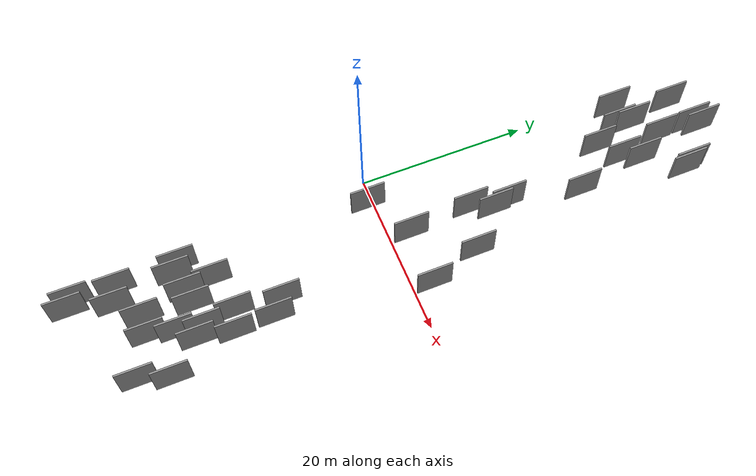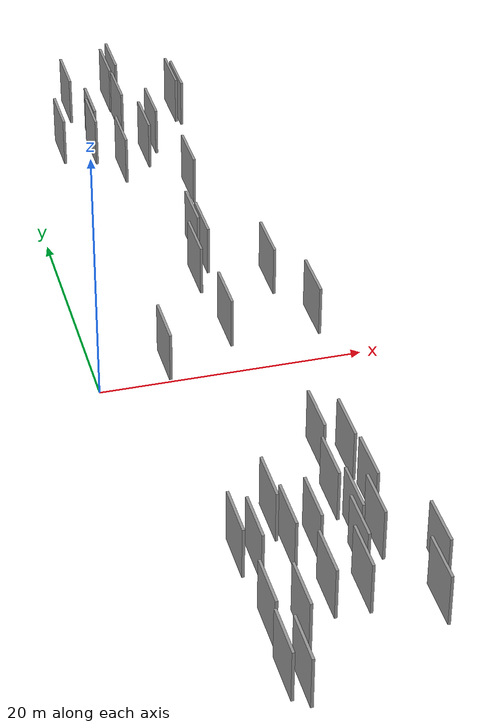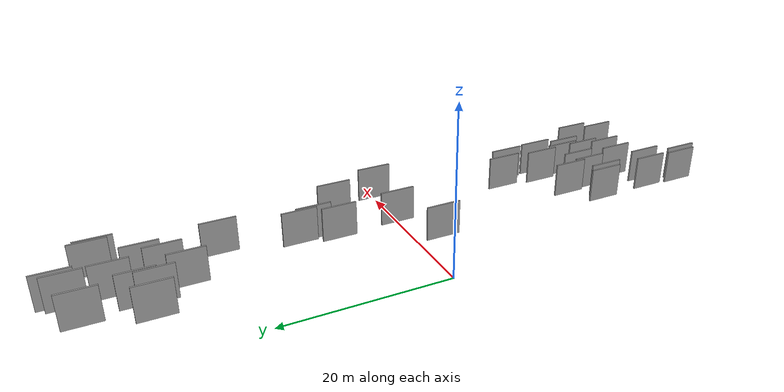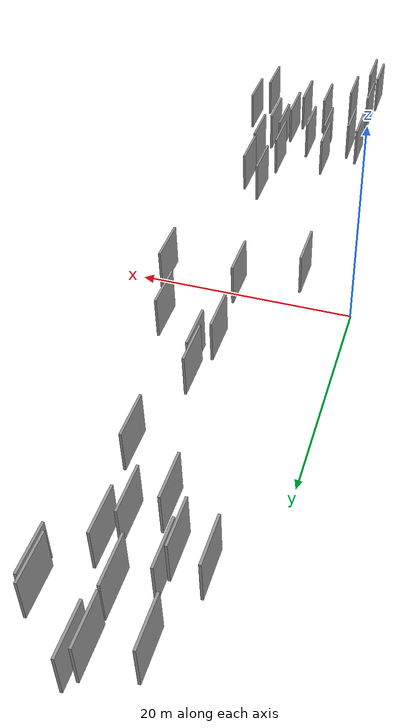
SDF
<sdf version="1.6">
 <world name="default">
  <scene>
   <sky><clouds><speed>12</speed></clouds></sky>
   <ambient>0.4 0.4 0.4 1</ambient>
   <background>0.7 0.7 0.7 1</background>
   <shadows>1</shadows>
  </scene>
  <gravity>0 0 -9.8066</gravity>
  <magnetic_field>6e-06 2.3e-05 -4.2e-05</magnetic_field>
  <physics default="0" name="default_physics" type="ode">
   <ode>
    <solver>
     <type>quick</type>
     <iters>10</iters>
     <sor>1.0</sor>
     <use_dynamic_moi_rescaling>0</use_dynamic_moi_rescaling>
    </solver>
    <constraints>
     <cfm>0</cfm>
     <erp>0.2</erp>
     <contact_max_correcting_vel>100</contact_max_correcting_vel>
     <contact_surface_layer>0.001</contact_surface_layer>
    </constraints>
   </ode>
   <max_step_size>0.004</max_step_size>
   <real_time_factor>1</real_time_factor>
   <real_time_update_rate>250</real_time_update_rate>
  </physics>
  <light name="sun" type="directional">
   <pose>0 0 10 0 0 0</pose>
   <diffuse>0.8 0.8 0.8 1</diffuse>
   <specular>0.2 0.2 0.2 1</specular>
   <attenuation>
    <range>1000</range>
    <constant>0.9</constant>
    <linear>0.01</linear>
    <quadratic>0.001</quadratic>
   </attenuation>
   <direction>-0.5 0.1 -0.9</direction>
  </light>
  <model name="grey_wall_1">
   <static>1</static>
   <pose>4.3847 -29.8307 2.5 0.000000 0.000000 1.570796</pose>
   <link name="link">
    <pose>0 0 2.00 0 0 0</pose>
    <collision name="collision"><geometry><box><size>4.00 0.2 4.00</size></box></geometry></collision>
    <visual name="visual">
     <cast_shadows>0</cast_shadows>
     <geometry><box><size>4.00 0.2 4.00</size></box></geometry>
     <material>
      <script>
       <uri>model://grey_wall/materials/scripts</uri>
       <uri>model://grey_wall/materials/textures</uri>
       <name>vrc/grey_wall</name>
      </script>
     </material>
    </visual>
   </link>
  </model>
  <model name="grey_wall_2">
   <static>1</static>
   <pose>14.2228 -19.6094 2.5 0.000000 0.000000 1.570796</pose>
   <link name="link">
    <pose>0 0 2.00 0 0 0</pose>
    <collision name="collision"><geometry><box><size>4.00 0.2 4.00</size></box></geometry></collision>
    <visual name="visual">
     <cast_shadows>0</cast_shadows>
     <geometry><box><size>4.00 0.2 4.00</size></box></geometry>
     <material>
      <script>
       <uri>model://grey_wall/materials/scripts</uri>
       <uri>model://grey_wall/materials/textures</uri>
       <name>vrc/grey_wall</name>
      </script>
     </material>
    </visual>
   </link>
  </model>
  <model name="grey_wall_3">
   <static>1</static>
   <pose>9.9990 1.8396 2.5 0.000000 0.000000 1.570796</pose>
   <link name="link">
    <pose>0 0 2.00 0 0 0</pose>
    <collision name="collision"><geometry><box><size>4.00 0.2 4.00</size></box></geometry></collision>
    <visual name="visual">
     <cast_shadows>0</cast_shadows>
     <geometry><box><size>4.00 0.2 4.00</size></box></geometry>
     <material>
      <script>
       <uri>model://grey_wall/materials/scripts</uri>
       <uri>model://grey_wall/materials/textures</uri>
       <name>vrc/grey_wall</name>
      </script>
     </material>
    </visual>
   </link>
  </model>
  <model name="grey_wall_4">
   <static>1</static>
   <pose>3.2745 30.1611 2.5 0.000000 0.000000 1.570796</pose>
   <link name="link">
    <pose>0 0 2.00 0 0 0</pose>
    <collision name="collision"><geometry><box><size>4.00 0.2 4.00</size></box></geometry></collision>
    <visual name="visual">
     <cast_shadows>0</cast_shadows>
     <geometry><box><size>4.00 0.2 4.00</size></box></geometry>
     <material>
      <script>
       <uri>model://grey_wall/materials/scripts</uri>
       <uri>model://grey_wall/materials/textures</uri>
       <name>vrc/grey_wall</name>
      </script>
     </material>
    </visual>
   </link>
  </model>
  <model name="grey_wall_5">
   <static>1</static>
   <pose>9.4414 38.3951 2.5 0.000000 0.000000 1.570796</pose>
   <link name="link">
    <pose>0 0 2.00 0 0 0</pose>
    <collision name="collision"><geometry><box><size>4.00 0.2 4.00</size></box></geometry></collision>
    <visual name="visual">
     <cast_shadows>0</cast_shadows>
     <geometry><box><size>4.00 0.2 4.00</size></box></geometry>
     <material>
      <script>
       <uri>model://grey_wall/materials/scripts</uri>
       <uri>model://grey_wall/materials/textures</uri>
       <name>vrc/grey_wall</name>
      </script>
     </material>
    </visual>
   </link>
  </model>
  <model name="grey_wall_6">
   <static>1</static>
   <pose>10.9726 29.9443 2.5 0.000000 0.000000 1.570796</pose>
   <link name="link">
    <pose>0 0 2.00 0 0 0</pose>
    <collision name="collision"><geometry><box><size>4.00 0.2 4.00</size></box></geometry></collision>
    <visual name="visual">
     <cast_shadows>0</cast_shadows>
     <geometry><box><size>4.00 0.2 4.00</size></box></geometry>
     <material>
      <script>
       <uri>model://grey_wall/materials/scripts</uri>
       <uri>model://grey_wall/materials/textures</uri>
       <name>vrc/grey_wall</name>
      </script>
     </material>
    </visual>
   </link>
  </model>
  <model name="grey_wall_7">
   <static>1</static>
   <pose>6.3813 -30.5952 2.5 0.000000 0.000000 1.570796</pose>
   <link name="link">
    <pose>0 0 2.00 0 0 0</pose>
    <collision name="collision"><geometry><box><size>4.00 0.2 4.00</size></box></geometry></collision>
    <visual name="visual">
     <cast_shadows>0</cast_shadows>
     <geometry><box><size>4.00 0.2 4.00</size></box></geometry>
     <material>
      <script>
       <uri>model://grey_wall/materials/scripts</uri>
       <uri>model://grey_wall/materials/textures</uri>
       <name>vrc/grey_wall</name>
      </script>
     </material>
    </visual>
   </link>
  </model>
  <model name="grey_wall_8">
   <static>1</static>
   <pose>5.1197 -35.2405 2.5 0.000000 0.000000 1.570796</pose>
   <link name="link">
    <pose>0 0 2.00 0 0 0</pose>
    <collision name="collision"><geometry><box><size>4.00 0.2 4.00</size></box></geometry></collision>
    <visual name="visual">
     <cast_shadows>0</cast_shadows>
     <geometry><box><size>4.00 0.2 4.00</size></box></geometry>
     <material>
      <script>
       <uri>model://grey_wall/materials/scripts</uri>
       <uri>model://grey_wall/materials/textures</uri>
       <name>vrc/grey_wall</name>
      </script>
     </material>
    </visual>
   </link>
  </model>
  <model name="grey_wall_9">
   <static>1</static>
   <pose>5.8029 29.4594 2.5 0.000000 0.000000 1.570796</pose>
   <link name="link">
    <pose>0 0 2.00 0 0 0</pose>
    <collision name="collision"><geometry><box><size>4.00 0.2 4.00</size></box></geometry></collision>
    <visual name="visual">
     <cast_shadows>0</cast_shadows>
     <geometry><box><size>4.00 0.2 4.00</size></box></geometry>
     <material>
      <script>
       <uri>model://grey_wall/materials/scripts</uri>
       <uri>model://grey_wall/materials/textures</uri>
       <name>vrc/grey_wall</name>
      </script>
     </material>
    </visual>
   </link>
  </model>
  <model name="grey_wall_10">
   <static>1</static>
   <pose>13.7922 34.5497 2.5 0.000000 0.000000 1.570796</pose>
   <link name="link">
    <pose>0 0 2.00 0 0 0</pose>
    <collision name="collision"><geometry><box><size>4.00 0.2 4.00</size></box></geometry></collision>
    <visual name="visual">
     <cast_shadows>0</cast_shadows>
     <geometry><box><size>4.00 0.2 4.00</size></box></geometry>
     <material>
      <script>
       <uri>model://grey_wall/materials/scripts</uri>
       <uri>model://grey_wall/materials/textures</uri>
       <name>vrc/grey_wall</name>
      </script>
     </material>
    </visual>
   </link>
  </model>
  <model name="grey_wall_11">
   <static>1</static>
   <pose>4.1305 -34.4087 2.5 0.000000 0.000000 1.570796</pose>
   <link name="link">
    <pose>0 0 2.00 0 0 0</pose>
    <collision name="collision"><geometry><box><size>4.00 0.2 4.00</size></box></geometry></collision>
    <visual name="visual">
     <cast_shadows>0</cast_shadows>
     <geometry><box><size>4.00 0.2 4.00</size></box></geometry>
     <material>
      <script>
       <uri>model://grey_wall/materials/scripts</uri>
       <uri>model://grey_wall/materials/textures</uri>
       <name>vrc/grey_wall</name>
      </script>
     </material>
    </visual>
   </link>
  </model>
  <model name="grey_wall_12">
   <static>1</static>
   <pose>16.6823 1.7361 2.5 0.000000 0.000000 1.570796</pose>
   <link name="link">
    <pose>0 0 2.00 0 0 0</pose>
    <collision name="collision"><geometry><box><size>4.00 0.2 4.00</size></box></geometry></collision>
    <visual name="visual">
     <cast_shadows>0</cast_shadows>
     <geometry><box><size>4.00 0.2 4.00</size></box></geometry>
     <material>
      <script>
       <uri>model://grey_wall/materials/scripts</uri>
       <uri>model://grey_wall/materials/textures</uri>
       <name>vrc/grey_wall</name>
      </script>
     </material>
    </visual>
   </link>
  </model>
  <model name="grey_wall_13">
   <static>1</static>
   <pose>14.0278 -15.2197 2.5 0.000000 0.000000 1.570796</pose>
   <link name="link">
    <pose>0 0 2.00 0 0 0</pose>
    <collision name="collision"><geometry><box><size>4.00 0.2 4.00</size></box></geometry></collision>
    <visual name="visual">
     <cast_shadows>0</cast_shadows>
     <geometry><box><size>4.00 0.2 4.00</size></box></geometry>
     <material>
      <script>
       <uri>model://grey_wall/materials/scripts</uri>
       <uri>model://grey_wall/materials/textures</uri>
       <name>vrc/grey_wall</name>
      </script>
     </material>
    </visual>
   </link>
  </model>
  <model name="grey_wall_14">
   <static>1</static>
   <pose>4.6592 -1.1658 2.5 0.000000 0.000000 1.570796</pose>
   <link name="link">
    <pose>0 0 2.00 0 0 0</pose>
    <collision name="collision"><geometry><box><size>4.00 0.2 4.00</size></box></geometry></collision>
    <visual name="visual">
     <cast_shadows>0</cast_shadows>
     <geometry><box><size>4.00 0.2 4.00</size></box></geometry>
     <material>
      <script>
       <uri>model://grey_wall/materials/scripts</uri>
       <uri>model://grey_wall/materials/textures</uri>
       <name>vrc/grey_wall</name>
      </script>
     </material>
    </visual>
   </link>
  </model>
  <model name="grey_wall_15">
   <static>1</static>
   <pose>8.8139 33.2673 2.5 0.000000 0.000000 1.570796</pose>
   <link name="link">
    <pose>0 0 2.00 0 0 0</pose>
    <collision name="collision"><geometry><box><size>4.00 0.2 4.00</size></box></geometry></collision>
    <visual name="visual">
     <cast_shadows>0</cast_shadows>
     <geometry><box><size>4.00 0.2 4.00</size></box></geometry>
     <material>
      <script>
       <uri>model://grey_wall/materials/scripts</uri>
       <uri>model://grey_wall/materials/textures</uri>
       <name>vrc/grey_wall</name>
      </script>
     </material>
    </visual>
   </link>
  </model>
  <model name="grey_wall_16">
   <static>1</static>
   <pose>5.2324 -23.7114 2.5 0.000000 0.000000 1.570796</pose>
   <link name="link">
    <pose>0 0 2.00 0 0 0</pose>
    <collision name="collision"><geometry><box><size>4.00 0.2 4.00</size></box></geometry></collision>
    <visual name="visual">
     <cast_shadows>0</cast_shadows>
     <geometry><box><size>4.00 0.2 4.00</size></box></geometry>
     <material>
      <script>
       <uri>model://grey_wall/materials/scripts</uri>
       <uri>model://grey_wall/materials/textures</uri>
       <name>vrc/grey_wall</name>
      </script>
     </material>
    </visual>
   </link>
  </model>
  <model name="grey_wall_17">
   <static>1</static>
   <pose>5.1013 36.6157 2.5 0.000000 0.000000 1.570796</pose>
   <link name="link">
    <pose>0 0 2.00 0 0 0</pose>
    <collision name="collision"><geometry><box><size>4.00 0.2 4.00</size></box></geometry></collision>
    <visual name="visual">
     <cast_shadows>0</cast_shadows>
     <geometry><box><size>4.00 0.2 4.00</size></box></geometry>
     <material>
      <script>
       <uri>model://grey_wall/materials/scripts</uri>
       <uri>model://grey_wall/materials/textures</uri>
       <name>vrc/grey_wall</name>
      </script>
     </material>
    </visual>
   </link>
  </model>
  <model name="grey_wall_18">
   <static>1</static>
   <pose>13.4815 -23.4838 2.5 0.000000 0.000000 1.570796</pose>
   <link name="link">
    <pose>0 0 2.00 0 0 0</pose>
    <collision name="collision"><geometry><box><size>4.00 0.2 4.00</size></box></geometry></collision>
    <visual name="visual">
     <cast_shadows>0</cast_shadows>
     <geometry><box><size>4.00 0.2 4.00</size></box></geometry>
     <material>
      <script>
       <uri>model://grey_wall/materials/scripts</uri>
       <uri>model://grey_wall/materials/textures</uri>
       <name>vrc/grey_wall</name>
      </script>
     </material>
    </visual>
   </link>
  </model>
  <model name="grey_wall_19">
   <static>1</static>
   <pose>12.3198 -22.4349 2.5 0.000000 0.000000 1.570796</pose>
   <link name="link">
    <pose>0 0 2.00 0 0 0</pose>
    <collision name="collision"><geometry><box><size>4.00 0.2 4.00</size></box></geometry></collision>
    <visual name="visual">
     <cast_shadows>0</cast_shadows>
     <geometry><box><size>4.00 0.2 4.00</size></box></geometry>
     <material>
      <script>
       <uri>model://grey_wall/materials/scripts</uri>
       <uri>model://grey_wall/materials/textures</uri>
       <name>vrc/grey_wall</name>
      </script>
     </material>
    </visual>
   </link>
  </model>
  <model name="grey_wall_20">
   <static>1</static>
   <pose>11.1472 -28.1819 2.5 0.000000 0.000000 1.570796</pose>
   <link name="link">
    <pose>0 0 2.00 0 0 0</pose>
    <collision name="collision"><geometry><box><size>4.00 0.2 4.00</size></box></geometry></collision>
    <visual name="visual">
     <cast_shadows>0</cast_shadows>
     <geometry><box><size>4.00 0.2 4.00</size></box></geometry>
     <material>
      <script>
       <uri>model://grey_wall/materials/scripts</uri>
       <uri>model://grey_wall/materials/textures</uri>
       <name>vrc/grey_wall</name>
      </script>
     </material>
    </visual>
   </link>
  </model>
  <model name="grey_wall_21">
   <static>1</static>
   <pose>11.8134 -25.2558 2.5 0.000000 0.000000 1.570796</pose>
   <link name="link">
    <pose>0 0 2.00 0 0 0</pose>
    <collision name="collision"><geometry><box><size>4.00 0.2 4.00</size></box></geometry></collision>
    <visual name="visual">
     <cast_shadows>0</cast_shadows>
     <geometry><box><size>4.00 0.2 4.00</size></box></geometry>
     <material>
      <script>
       <uri>model://grey_wall/materials/scripts</uri>
       <uri>model://grey_wall/materials/textures</uri>
       <name>vrc/grey_wall</name>
      </script>
     </material>
    </visual>
   </link>
  </model>
  <model name="grey_wall_22">
   <static>1</static>
   <pose>4.1605 -22.8858 2.5 0.000000 0.000000 1.570796</pose>
   <link name="link">
    <pose>0 0 2.00 0 0 0</pose>
    <collision name="collision"><geometry><box><size>4.00 0.2 4.00</size></box></geometry></collision>
    <visual name="visual">
     <cast_shadows>0</cast_shadows>
     <geometry><box><size>4.00 0.2 4.00</size></box></geometry>
     <material>
      <script>
       <uri>model://grey_wall/materials/scripts</uri>
       <uri>model://grey_wall/materials/textures</uri>
       <name>vrc/grey_wall</name>
      </script>
     </material>
    </visual>
   </link>
  </model>
  <model name="grey_wall_23">
   <static>1</static>
   <pose>10.3701 13.3363 2.5 0.000000 0.000000 1.570796</pose>
   <link name="link">
    <pose>0 0 2.00 0 0 0</pose>
    <collision name="collision"><geometry><box><size>4.00 0.2 4.00</size></box></geometry></collision>
    <visual name="visual">
     <cast_shadows>0</cast_shadows>
     <geometry><box><size>4.00 0.2 4.00</size></box></geometry>
     <material>
      <script>
       <uri>model://grey_wall/materials/scripts</uri>
       <uri>model://grey_wall/materials/textures</uri>
       <name>vrc/grey_wall</name>
      </script>
     </material>
    </visual>
   </link>
  </model>
  <model name="grey_wall_24">
   <static>1</static>
   <pose>9.4260 -22.7633 2.5 0.000000 0.000000 1.570796</pose>
   <link name="link">
    <pose>0 0 2.00 0 0 0</pose>
    <collision name="collision"><geometry><box><size>4.00 0.2 4.00</size></box></geometry></collision>
    <visual name="visual">
     <cast_shadows>0</cast_shadows>
     <geometry><box><size>4.00 0.2 4.00</size></box></geometry>
     <material>
      <script>
       <uri>model://grey_wall/materials/scripts</uri>
       <uri>model://grey_wall/materials/textures</uri>
       <name>vrc/grey_wall</name>
      </script>
     </material>
    </visual>
   </link>
  </model>
  <model name="grey_wall_25">
   <static>1</static>
   <pose>6.0839 31.2071 2.5 0.000000 0.000000 1.570796</pose>
   <link name="link">
    <pose>0 0 2.00 0 0 0</pose>
    <collision name="collision"><geometry><box><size>4.00 0.2 4.00</size></box></geometry></collision>
    <visual name="visual">
     <cast_shadows>0</cast_shadows>
     <geometry><box><size>4.00 0.2 4.00</size></box></geometry>
     <material>
      <script>
       <uri>model://grey_wall/materials/scripts</uri>
       <uri>model://grey_wall/materials/textures</uri>
       <name>vrc/grey_wall</name>
      </script>
     </material>
    </visual>
   </link>
  </model>
  <model name="grey_wall_26">
   <static>1</static>
   <pose>7.2217 -19.9952 2.5 0.000000 0.000000 1.570796</pose>
   <link name="link">
    <pose>0 0 2.00 0 0 0</pose>
    <collision name="collision"><geometry><box><size>4.00 0.2 4.00</size></box></geometry></collision>
    <visual name="visual">
     <cast_shadows>0</cast_shadows>
     <geometry><box><size>4.00 0.2 4.00</size></box></geometry>
     <material>
      <script>
       <uri>model://grey_wall/materials/scripts</uri>
       <uri>model://grey_wall/materials/textures</uri>
       <name>vrc/grey_wall</name>
      </script>
     </material>
    </visual>
   </link>
  </model>
  <model name="grey_wall_27">
   <static>1</static>
   <pose>15.5526 -30.4218 2.5 0.000000 0.000000 1.570796</pose>
   <link name="link">
    <pose>0 0 2.00 0 0 0</pose>
    <collision name="collision"><geometry><box><size>4.00 0.2 4.00</size></box></geometry></collision>
    <visual name="visual">
     <cast_shadows>0</cast_shadows>
     <geometry><box><size>4.00 0.2 4.00</size></box></geometry>
     <material>
      <script>
       <uri>model://grey_wall/materials/scripts</uri>
       <uri>model://grey_wall/materials/textures</uri>
       <name>vrc/grey_wall</name>
      </script>
     </material>
    </visual>
   </link>
  </model>
  <model name="grey_wall_28">
   <static>1</static>
   <pose>12.3128 -13.8022 2.5 0.000000 0.000000 1.570796</pose>
   <link name="link">
    <pose>0 0 2.00 0 0 0</pose>
    <collision name="collision"><geometry><box><size>4.00 0.2 4.00</size></box></geometry></collision>
    <visual name="visual">
     <cast_shadows>0</cast_shadows>
     <geometry><box><size>4.00 0.2 4.00</size></box></geometry>
     <material>
      <script>
       <uri>model://grey_wall/materials/scripts</uri>
       <uri>model://grey_wall/materials/textures</uri>
       <name>vrc/grey_wall</name>
      </script>
     </material>
    </visual>
   </link>
  </model>
  <model name="grey_wall_29">
   <static>1</static>
   <pose>7.5653 26.0391 2.5 0.000000 0.000000 1.570796</pose>
   <link name="link">
    <pose>0 0 2.00 0 0 0</pose>
    <collision name="collision"><geometry><box><size>4.00 0.2 4.00</size></box></geometry></collision>
    <visual name="visual">
     <cast_shadows>0</cast_shadows>
     <geometry><box><size>4.00 0.2 4.00</size></box></geometry>
     <material>
      <script>
       <uri>model://grey_wall/materials/scripts</uri>
       <uri>model://grey_wall/materials/textures</uri>
       <name>vrc/grey_wall</name>
      </script>
     </material>
    </visual>
   </link>
  </model>
  <model name="grey_wall_30">
   <static>1</static>
   <pose>10.7030 11.5822 2.5 0.000000 0.000000 1.570796</pose>
   <link name="link">
    <pose>0 0 2.00 0 0 0</pose>
    <collision name="collision"><geometry><box><size>4.00 0.2 4.00</size></box></geometry></collision>
    <visual name="visual">
     <cast_shadows>0</cast_shadows>
     <geometry><box><size>4.00 0.2 4.00</size></box></geometry>
     <material>
      <script>
       <uri>model://grey_wall/materials/scripts</uri>
       <uri>model://grey_wall/materials/textures</uri>
       <name>vrc/grey_wall</name>
      </script>
     </material>
    </visual>
   </link>
  </model>
  <model name="grey_wall_31">
   <static>1</static>
   <pose>14.8318 7.5999 2.5 0.000000 0.000000 1.570796</pose>
   <link name="link">
    <pose>0 0 2.00 0 0 0</pose>
    <collision name="collision"><geometry><box><size>4.00 0.2 4.00</size></box></geometry></collision>
    <visual name="visual">
     <cast_shadows>0</cast_shadows>
     <geometry><box><size>4.00 0.2 4.00</size></box></geometry>
     <material>
      <script>
       <uri>model://grey_wall/materials/scripts</uri>
       <uri>model://grey_wall/materials/textures</uri>
       <name>vrc/grey_wall</name>
      </script>
     </material>
    </visual>
   </link>
  </model>
  <model name="grey_wall_32">
   <static>1</static>
   <pose>7.6338 -23.0873 2.5 0.000000 0.000000 1.570796</pose>
   <link name="link">
    <pose>0 0 2.00 0 0 0</pose>
    <collision name="collision"><geometry><box><size>4.00 0.2 4.00</size></box></geometry></collision>
    <visual name="visual">
     <cast_shadows>0</cast_shadows>
     <geometry><box><size>4.00 0.2 4.00</size></box></geometry>
     <material>
      <script>
       <uri>model://grey_wall/materials/scripts</uri>
       <uri>model://grey_wall/materials/textures</uri>
       <name>vrc/grey_wall</name>
      </script>
     </material>
    </visual>
   </link>
  </model>
  <model name="grey_wall_33">
   <static>1</static>
   <pose>11.7596 -18.9551 2.5 0.000000 0.000000 1.570796</pose>
   <link name="link">
    <pose>0 0 2.00 0 0 0</pose>
    <collision name="collision"><geometry><box><size>4.00 0.2 4.00</size></box></geometry></collision>
    <visual name="visual">
     <cast_shadows>0</cast_shadows>
     <geometry><box><size>4.00 0.2 4.00</size></box></geometry>
     <material>
      <script>
       <uri>model://grey_wall/materials/scripts</uri>
       <uri>model://grey_wall/materials/textures</uri>
       <name>vrc/grey_wall</name>
      </script>
     </material>
    </visual>
   </link>
  </model>
  <model name="grey_wall_34">
   <static>1</static>
   <pose>16.6591 -27.0915 2.5 0.000000 0.000000 1.570796</pose>
   <link name="link">
    <pose>0 0 2.00 0 0 0</pose>
    <collision name="collision"><geometry><box><size>4.00 0.2 4.00</size></box></geometry></collision>
    <visual name="visual">
     <cast_shadows>0</cast_shadows>
     <geometry><box><size>4.00 0.2 4.00</size></box></geometry>
     <material>
      <script>
       <uri>model://grey_wall/materials/scripts</uri>
       <uri>model://grey_wall/materials/textures</uri>
       <name>vrc/grey_wall</name>
      </script>
     </material>
    </visual>
   </link>
  </model>
  <model name="grey_wall_35">
   <static>1</static>
   <pose>14.1236 33.9546 2.5 0.000000 0.000000 1.570796</pose>
   <link name="link">
    <pose>0 0 2.00 0 0 0</pose>
    <collision name="collision"><geometry><box><size>4.00 0.2 4.00</size></box></geometry></collision>
    <visual name="visual">
     <cast_shadows>0</cast_shadows>
     <geometry><box><size>4.00 0.2 4.00</size></box></geometry>
     <material>
      <script>
       <uri>model://grey_wall/materials/scripts</uri>
       <uri>model://grey_wall/materials/textures</uri>
       <name>vrc/grey_wall</name>
      </script>
     </material>
    </visual>
   </link>
  </model>
  <model name="grey_wall_36">
   <static>1</static>
   <pose>9.5283 9.0852 2.5 0.000000 0.000000 1.570796</pose>
   <link name="link">
    <pose>0 0 2.00 0 0 0</pose>
    <collision name="collision"><geometry><box><size>4.00 0.2 4.00</size></box></geometry></collision>
    <visual name="visual">
     <cast_shadows>0</cast_shadows>
     <geometry><box><size>4.00 0.2 4.00</size></box></geometry>
     <material>
      <script>
       <uri>model://grey_wall/materials/scripts</uri>
       <uri>model://grey_wall/materials/textures</uri>
       <name>vrc/grey_wall</name>
      </script>
     </material>
    </visual>
   </link>
  </model>
  <model name="grey_wall_37">
   <static>1</static>
   <pose>8.7468 37.5380 2.5 0.000000 0.000000 1.570796</pose>
   <link name="link">
    <pose>0 0 2.00 0 0 0</pose>
    <collision name="collision"><geometry><box><size>4.00 0.2 4.00</size></box></geometry></collision>
    <visual name="visual">
     <cast_shadows>0</cast_shadows>
     <geometry><box><size>4.00 0.2 4.00</size></box></geometry>
     <material>
      <script>
       <uri>model://grey_wall/materials/scripts</uri>
       <uri>model://grey_wall/materials/textures</uri>
       <name>vrc/grey_wall</name>
      </script>
     </material>
    </visual>
   </link>
  </model>
  <model name="grey_wall_38">
   <static>1</static>
   <pose>12.1448 21.7128 2.5 0.000000 0.000000 1.570796</pose>
   <link name="link">
    <pose>0 0 2.00 0 0 0</pose>
    <collision name="collision"><geometry><box><size>4.00 0.2 4.00</size></box></geometry></collision>
    <visual name="visual">
     <cast_shadows>0</cast_shadows>
     <geometry><box><size>4.00 0.2 4.00</size></box></geometry>
     <material>
      <script>
       <uri>model://grey_wall/materials/scripts</uri>
       <uri>model://grey_wall/materials/textures</uri>
       <name>vrc/grey_wall</name>
      </script>
     </material>
    </visual>
   </link>
  </model>
  <model name="grey_wall_39">
   <static>1</static>
   <pose>8.8124 -28.0743 2.5 0.000000 0.000000 1.570796</pose>
   <link name="link">
    <pose>0 0 2.00 0 0 0</pose>
    <collision name="collision"><geometry><box><size>4.00 0.2 4.00</size></box></geometry></collision>
    <visual name="visual">
     <cast_shadows>0</cast_shadows>
     <geometry><box><size>4.00 0.2 4.00</size></box></geometry>
     <material>
      <script>
       <uri>model://grey_wall/materials/scripts</uri>
       <uri>model://grey_wall/materials/textures</uri>
       <name>vrc/grey_wall</name>
      </script>
     </material>
    </visual>
   </link>
  </model>
  <model name="grey_wall_40">
   <static>1</static>
   <pose>9.9205 27.8956 2.5 0.000000 0.000000 1.570796</pose>
   <link name="link">
    <pose>0 0 2.00 0 0 0</pose>
    <collision name="collision"><geometry><box><size>4.00 0.2 4.00</size></box></geometry></collision>
    <visual name="visual">
     <cast_shadows>0</cast_shadows>
     <geometry><box><size>4.00 0.2 4.00</size></box></geometry>
     <material>
      <script>
       <uri>model://grey_wall/materials/scripts</uri>
       <uri>model://grey_wall/materials/textures</uri>
       <name>vrc/grey_wall</name>
      </script>
     </material>
    </visual>
   </link>
  </model>
 </world>
</sdf>
